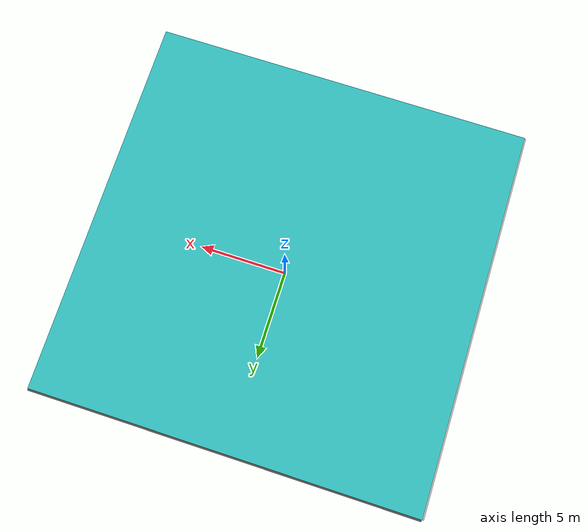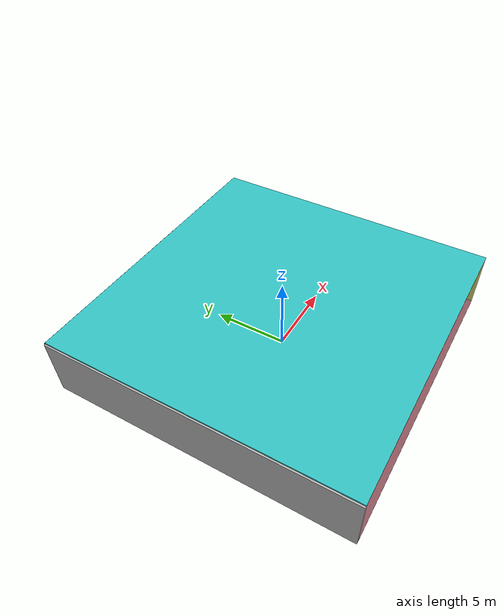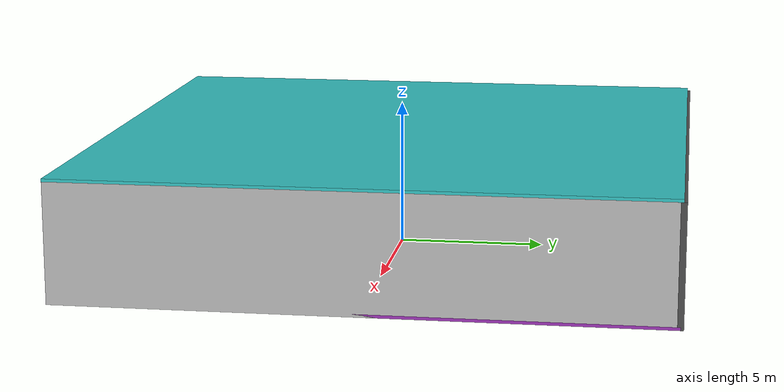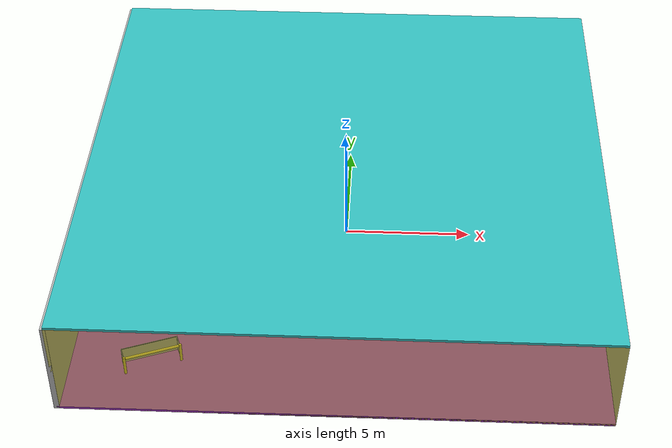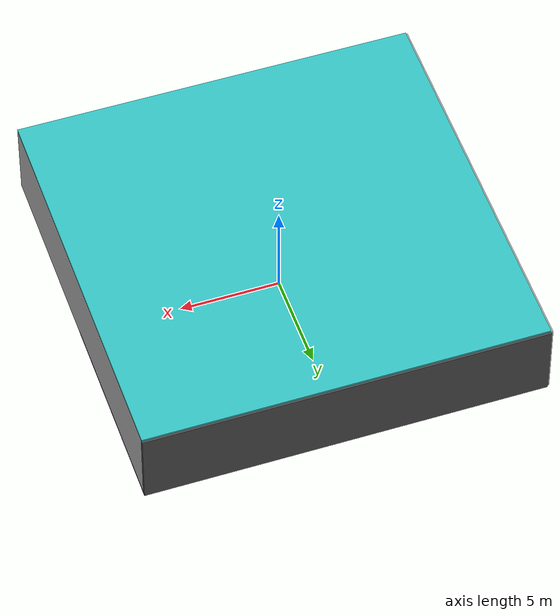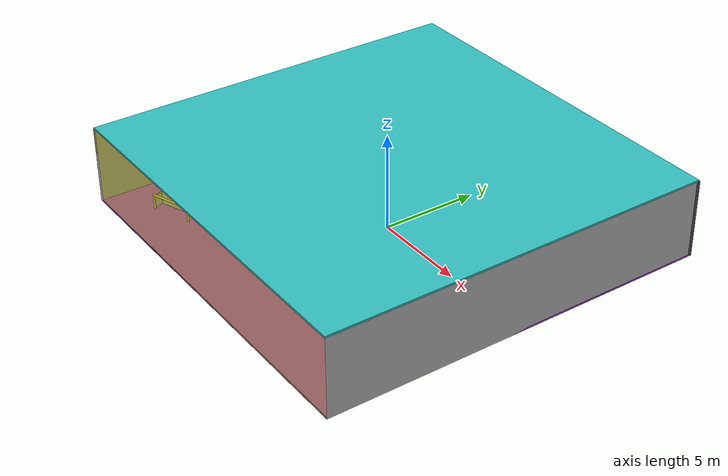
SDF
<sdf version="1.4">
 <world name="default">
  <physics type="ode">
   <max_step_size>0.001</max_step_size>
   <real_time_factor>1</real_time_factor>
   <real_time_update_rate>1000</real_time_update_rate>
   <gravity>0 0 -9.8</gravity>
  </physics>
  <scene><ambient>0.4 0.4 0.4 1</ambient><background>0.7 0.7 0.7 1</background><shadows>1</shadows></scene>
  <model name="Surrounding">
   <static>1</static>
   <link name="Ceiling">
    <collision name="Ceiling_Collision"><geometry><box><size>20 20 0.1</size></box></geometry></collision>
    <visual name="Ceiling_Visual">
     <geometry><box><size>20 20 0.1</size></box></geometry>
     <material>
      <script><uri>file://media/materials/scripts/gazebo.material</uri><name>Gazebo/TurquoiseGlow</name></script>
     </material>
    </visual>
    <pose>0 0 4.05 0 0 0</pose>
   </link>
   <link name="Wall_South">
    <collision name="Wall_South_Collision">
     <geometry><box><size>20 0 4</size></box></geometry>
     <pose>0 0 2 0 -0 0</pose>
    </collision>
    <visual name="Wall_South_Visual">
     <pose>0 0 2 0 -0 0</pose>
     <geometry><box><size>20 0 4</size></box></geometry>
     <material>
      <script>
       <uri>file://media/materials/scripts/gazebo.material</uri>
       <name>Gazebo/YellowTransparent</name>
      </script>
     </material>
    </visual>
    <velocity_decay><linear>0</linear><angular>0</angular></velocity_decay>
    <pose>0 -10 0 0 -0 0</pose>
   </link>
   <link name="Wall_East">
    <collision name="Wall_21_Collision">
     <geometry><box><size>20 0 4</size></box></geometry>
     <pose>0 0 2 0 -0 0</pose>
    </collision>
    <visual name="Wall_21_Visual">
     <pose>0 0 2 0 -0 0</pose>
     <geometry><box><size>20 0 4</size></box></geometry>
     <material>
      <script><uri>file://media/materials/scripts/gazebo.material</uri><name>Gazebo/Pioneer2Body</name></script>
     </material>
    </visual>
    <velocity_decay><linear>0</linear><angular>0</angular></velocity_decay>
    <pose>10 0 0 0 -0 1.5708</pose>
   </link>
   <link name="Wall_North">
    <collision name="Wall_22_Collision">
     <geometry><box><size>20 0.2 4</size></box></geometry>
     <pose>0 0 2 0 -0 0</pose>
    </collision>
    <visual name="Wall_22_Visual">
     <pose>0 0 2 0 -0 0</pose>
     <geometry><box><size>20 0.2 4</size></box></geometry>
     <material>
      <script><uri>file://media/materials/scripts/gazebo.material</uri><name>Gazebo/Road</name></script>
     </material>
    </visual>
    <velocity_decay><linear>0</linear><angular>0</angular></velocity_decay>
    <pose>0 10 0 0 -0 0</pose>
   </link>
   <link name="Wall_West">
    <collision name="Wall_23_Collision">
     <geometry><box><size>20 0.2 4</size></box></geometry>
     <pose>0 0 2 0 -0 0</pose>
    </collision>
    <visual name="Wall_23_Visual">
     <pose>0 0 2 0 -0 0</pose>
     <geometry><box><size>20 0.2 4</size></box></geometry>
     <material>
      <script><uri>file://media/materials/scripts/gazebo.material</uri><name>Gazebo/LightOn</name></script>
     </material>
    </visual>
    <velocity_decay><linear>0</linear><angular>0</angular></velocity_decay>
    <pose>-10 0 0 0 0 -1.5708</pose>
   </link>
   <link name="Ground_link">
    <collision name="collision">
     <pose>0 0 .05 0 -0 0</pose>
     <geometry><box><size>20 20 0.1</size></box></geometry>
    </collision>
    <visual name="visual">
     <pose>0 0 .05 0 -0 0</pose>
     <geometry><box><size>20 20 0.1</size></box></geometry>
     <material>
      <script><uri>file://media/materials/scripts/gazebo.material</uri><name>Gazebo/PurpleGlow</name></script>
     </material>
    </visual>
   </link>
   <static>1</static>
  </model>
  <spherical_coordinates>
   <surface_model>EARTH_WGS84</surface_model>
   <latitude_deg>0</latitude_deg>
   <longitude_deg>0</longitude_deg>
   <elevation>0</elevation>
   <heading_deg>0</heading_deg>
  </spherical_coordinates>
  <light name="lightball_0" type="diffuse">
   <diffuse>0.8 0.8 0.8 1</diffuse>
   <specular>0.2 0.2 0.2 1</specular>
   <attenuation>
    <range>100</range>
    <constant>0.7</constant>
    <linear>0.01</linear>
    <quadratic>0.001</quadratic>
   </attenuation>
   <direction>-0.5 0.1 -0.9</direction>
   <pose>-2.02695499736 4.06065909803 2.53619266064 0 0 0</pose>
  </light>
  <light name="lightball_1" type="diffuse">
   <diffuse>0.8 0.8 0.8 1</diffuse>
   <specular>0.2 0.2 0.2 1</specular>
   <attenuation>
    <range>100</range>
    <constant>0.7</constant>
    <linear>0.01</linear>
    <quadratic>0.001</quadratic>
   </attenuation>
   <direction>-0.5 0.1 -0.9</direction>
   <pose>0.754476481315 9.75948342598 2.24133466057 0 0 0</pose>
  </light>
  <light name="lightball_2" type="diffuse">
   <diffuse>0.8 0.8 0.8 1</diffuse>
   <specular>0.2 0.2 0.2 1</specular>
   <attenuation>
    <range>100</range>
    <constant>0.7</constant>
    <linear>0.01</linear>
    <quadratic>0.001</quadratic>
   </attenuation>
   <direction>-0.5 0.1 -0.9</direction>
   <pose>-9.89715143469 -0.608567484501 3.42506827261 0 0 0</pose>
  </light>
  <light name="lightball_3" type="diffuse">
   <diffuse>0.8 0.8 0.8 1</diffuse>
   <specular>0.2 0.2 0.2 1</specular>
   <attenuation>
    <range>100</range>
    <constant>0.7</constant>
    <linear>0.01</linear>
    <quadratic>0.001</quadratic>
   </attenuation>
   <direction>-0.5 0.1 -0.9</direction>
   <pose>-4.00478891795 2.76230902227 2.84371889801 0 0 0</pose>
  </light>
  <light name="lightball_4" type="diffuse">
   <diffuse>0.8 0.8 0.8 1</diffuse>
   <specular>0.2 0.2 0.2 1</specular>
   <attenuation>
    <range>100</range>
    <constant>0.7</constant>
    <linear>0.01</linear>
    <quadratic>0.001</quadratic>
   </attenuation>
   <direction>-0.5 0.1 -0.9</direction>
   <pose>-8.68233367294 -5.06548352867 2.34776369175 0 0 0</pose>
  </light>
  <include>
   <uri>model://robocup_3Dsim_goal</uri>
   <pose>-6.78493704429 -7.9077230088 0 0 0 1.93606680252</pose>
  </include>
  <include>
   <uri>model://construction_cone</uri>
   <pose>-6.85270931531 1.30450570797 0 0 0 1.90819792075</pose>
  </include>
  <include><uri>model://cabinet</uri><pose>-8.03495105247 4.60991735944 0 0 0 0.236545421806</pose></include>
  <include>
   <uri>model://robocup_3Dsim_goal</uri>
   <pose>-4.89968690288 -5.25117434544 0 0 0 1.78276567658</pose>
  </include>
  <include>
   <uri>model://construction_cone</uri>
   <pose>-1.5834926411 -5.13278178101 0 0 0 1.84597149037</pose>
  </include>
  <include><uri>model://cabinet</uri><pose>2.21823171516 1.83542469278 0 0 0 0.868546674736</pose></include>
  <include>
   <uri>model://construction_cone</uri>
   <pose>4.72940341588 -2.14106185127 0 0 0 2.76138714816</pose>
  </include>
  <include>
   <uri>model://textured_shapes</uri>
   <pose>4.46984382563 1.84236594895 0 0 0 1.50390056286</pose>
  </include>
  <include><uri>model://cabinet</uri><pose>7.58821829011 -4.5205633706 0 0 0 2.06056613256</pose></include>
  <include><uri>model://cabinet</uri><pose>7.94816467361 1.86034582838 0 0 0 1.61080266879</pose></include>
 </world>
</sdf>

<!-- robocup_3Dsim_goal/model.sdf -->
<sdf version="1.5">
  <model name="robocup_3d_goal">
    <static>true</static>
    <link name="left_post">
      <pose>0 1.05 0.45 0 0 0</pose>
      <collision name="collision">
        <geometry>
          <cylinder>
            <radius>0.05</radius>
            <length>0.9</length>
          </cylinder>
        </geometry>
      </collision>
      <visual name="visual">
        <geometry>
          <cylinder>
            <radius>0.05</radius>
            <length>0.9</length>
          </cylinder>
        </geometry>
        <material>
          <script>
            <uri>file://media/materials/scripts/gazebo.material</uri>
            <name>Gazebo/ZincYellow</name>
          </script>
        </material>
      </visual>
    </link>
    <link name="left_support_horiz_lower">
      <pose>0.30 1.05 0.01 0 0 0</pose>
      <collision name="collision">
        <geometry>
          <box>
            <size>0.50 0.02 0.02</size>
          </box>
        </geometry>
      </collision>
      <visual name="visual">
        <geometry>
          <box>
            <size>0.50 0.02 0.02</size>
          </box>
        </geometry>
        <material>
          <script>
            <uri>file://media/materials/scripts/gazebo.material</uri>
            <name>Gazebo/White</name>
          </script>
        </material>
      </visual>
    </link>
    <link name="left_support_horiz_upper">
      <pose>0.30 1.05 0.79 0 0 0</pose>
      <collision name="collision">
        <geometry>
          <box>
            <size>0.50 0.02 0.02</size>
          </box>
        </geometry>
      </collision>
      <visual name="visual">
        <geometry>
          <box>
            <size>0.50 0.02 0.02</size>
          </box>
        </geometry>
        <material>
          <script>
            <uri>file://media/materials/scripts/gazebo.material</uri>
            <name>Gazebo/White</name>
          </script>
        </material>
      </visual>
    </link>
    <link name="left_support_vertical">
      <pose>0.56 1.05 0.4 0 1.5708 0</pose>
      <collision name="collision">
        <geometry>
          <box>
            <size>0.80 0.02 0.02</size>
          </box>
        </geometry>
      </collision>
      <visual name="visual">
        <geometry>
          <box>
            <size>0.80 0.02 0.02</size>
          </box>
        </geometry>
        <material>
          <script>
            <uri>file://media/materials/scripts/gazebo.material</uri>
            <name>Gazebo/White</name>
          </script>
        </material>
      </visual>
    </link>
    <link name="right_support_horiz_lower">
      <pose>0.30 -1.05 0.01 0 0 0</pose>
      <collision name="collision">
        <geometry>
          <box>
            <size>0.50 0.02 0.02</size>
          </box>
        </geometry>
      </collision>
      <visual name="visual">
        <geometry>
          <box>
            <size>0.50 0.02 0.02</size>
          </box>
        </geometry>
        <material>
          <script>
            <uri>file://media/materials/scripts/gazebo.material</uri>
            <name>Gazebo/White</name>
          </script>
        </material>
      </visual>
    </link>
    <link name="right_support_horiz_upper">
      <pose>0.30 -1.05 0.79 0 0 0</pose>
      <collision name="collision">
        <geometry>
          <box>
            <size>0.50 0.02 0.02</size>
          </box>
        </geometry>
      </collision>
      <visual name="visual">
        <geometry>
          <box>
            <size>0.50 0.02 0.02</size>
          </box>
        </geometry>
        <material>
          <script>
            <uri>file://media/materials/scripts/gazebo.material</uri>
            <name>Gazebo/White</name>
          </script>
        </material>
      </visual>
    </link>
    <link name="right_support_vertical">
      <pose>0.56 -1.05 0.4 0 1.5708 0</pose>
      <collision name="collision">
        <geometry>
          <box>
            <size>0.80 0.02 0.02</size>
          </box>
        </geometry>
      </collision>
      <visual name="visual">
        <geometry>
          <box>
            <size>0.80 0.02 0.02</size>
          </box>
        </geometry>
        <material>
          <script>
            <uri>file://media/materials/scripts/gazebo.material</uri>
            <name>Gazebo/White</name>
          </script>
        </material>
      </visual>
    </link>
    <link name="center_support_horiz_lower">
      <pose>0.56 0 0.01 0 1.5708 0</pose>
      <collision name="collision">
        <geometry>
          <box>
            <size>0.02 2.08 0.02</size>
          </box>
        </geometry>
      </collision>
      <visual name="visual">
        <geometry>
          <box>
            <size>0.02 2.08 0.02</size>
          </box>
        </geometry>
        <material>
          <script>
            <uri>file://media/materials/scripts/gazebo.material</uri>
            <name>Gazebo/White</name>
          </script>
        </material>
      </visual>
    </link>
    <link name="center_support_horiz_upper">
      <pose>0.56 0 0.79 0 1.5708 0</pose>
      <collision name="collision">
        <geometry>
          <box>
            <size>0.02 2.08 0.02</size>
          </box>
        </geometry>
      </collision>
      <visual name="visual">
        <geometry>
          <box>
            <size>0.02 2.08 0.02</size>
          </box>
        </geometry>
        <material>
          <script>
            <uri>file://media/materials/scripts/gazebo.material</uri>
            <name>Gazebo/White</name>
          </script>
        </material>
      </visual>
    </link>
    <link name="right_post">
      <pose>0 -1.05 0.45 0 0 0</pose>
      <collision name="collision">
        <geometry>
          <cylinder>
            <radius>0.05</radius>
            <length>0.9</length>
          </cylinder>
        </geometry>
      </collision>
      <visual name="visual">
        <geometry>
          <cylinder>
            <radius>0.05</radius>
            <length>0.9</length>
          </cylinder>
        </geometry>
        <material>
          <script>
            <uri>file://media/materials/scripts/gazebo.material</uri>
            <name>Gazebo/ZincYellow</name>
          </script>
        </material>
      </visual>
    </link>
    <link name="crossbar">
      <pose>0 0 0.85 1.57 1.57 0</pose>
      <collision name="collision">
        <geometry>
          <cylinder>
            <radius>0.05</radius>
            <length>2.0</length>
          </cylinder>
        </geometry>
      </collision>
      <visual name="visual">
        <geometry>
          <cylinder>
            <radius>0.05</radius>
            <length>2.0</length>
          </cylinder>
        </geometry>
        <material>
          <script>
            <uri>file://media/materials/scripts/gazebo.material</uri>
            <name>Gazebo/ZincYellow</name>
          </script>
        </material>
      </visual>
    </link>
    <link name="center_net">
      <pose>0.56 0 0.40 0 0 0</pose>
      <collision name="collision">
        <geometry>
          <box>
            <size>0.01 2.1 0.80</size>
          </box>
        </geometry>
      </collision>
      <visual name="visual">
        <geometry>
          <box>
            <size>0.01 2.1 0.80</size>
          </box>
        </geometry>
        <material>
          <script>
            <uri>model://../model_source/models/robocup09_spl_field/materials/scripts/</uri>
            <uri>model://../model_source/models/robocup09_spl_field/materials/textures/</uri>
            <name>RoboCup/Net</name>
          </script>
        </material>
      </visual>
    </link>
    <link name="left_net">
      <pose>0.30 1.05 0.40 0 0 0</pose>
      <collision name="collision">
        <geometry>
          <box>
            <size>0.50 0.01 0.76</size>
          </box>
        </geometry>
      </collision>
      <visual name="visual">
        <geometry>
          <box>
            <size>0.50 0.01 0.76</size>
          </box>
        </geometry>
        <material>
          <script>
            <uri>model://../model_source/models/robocup09_spl_field/materials/scripts/</uri>
            <uri>model://../model_source/models/robocup09_spl_field/materials/textures/</uri>
            <name>RoboCup/Net</name>
          </script>
        </material>
      </visual>
    </link>
    <link name="right_net">
      <pose>0.30 -1.05 0.40 0 0 0</pose>
      <collision name="collision">
        <geometry>
          <box>
            <size>0.50 0.01 0.76</size>
          </box>
        </geometry>
      </collision>
      <visual name="visual">
        <geometry>
          <box>
            <size>0.50 0.01 0.76</size>
          </box>
        </geometry>
        <material>
          <script>
            <uri>model://../model_source/models/robocup09_spl_field/materials/scripts/</uri>
            <uri>model://../model_source/models/robocup09_spl_field/materials/textures/</uri>
            <name>RoboCup/Net</name>
          </script>
        </material>
      </visual>
    </link>
  </model>
</sdf>

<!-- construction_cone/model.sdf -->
<sdf version="1.5">
  <model name="Construction Cone">
    <link name="link">
      <collision name="collision">
        <geometry>
          <mesh>
            <scale>10 10 10</scale>
            <uri>file://isr-testbed/construction_cone/meshes/construction_cone.dae</uri>
          </mesh>
        </geometry>
      </collision>
      <visual name="visual">
        <geometry>
          <mesh>
            <scale>10 10 10</scale>
            <uri>file://isr-testbed/construction_cone/meshes/construction_cone.dae</uri>
          </mesh>
        </geometry>
      </visual>
    </link>
  </model>
</sdf>

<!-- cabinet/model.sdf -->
<sdf version="1.5">
  <model name="cabinet">
    <static>true</static>
    <link name="cabinet_bottom_plate">
      <inertial>
        <pose>0 0 -1 0 0 0</pose>
        <inertia>
          <ixx>2.050000</ixx>
          <ixy>0</ixy>
          <ixz>0</ixz>
          <iyy>2.050000</iyy>
          <iyz>0</iyz>
          <izz>2.050000</izz>
        </inertia>
        <mass>25.000000</mass>
      </inertial>
      <collision name="cabinet_bottom_plate_geom">
        <pose>0 0 0.010000 0 0 0</pose>
        <geometry>
          <box>
            <size>0.450000 0.450000 0.020000</size>
          </box>
        </geometry>
      </collision>
      <visual name="cabinet_bottom_plate_geom_visual">
        <pose>0 0 0.010000 0 0 0</pose>
        <geometry>
          <box>
            <size>0.450000 0.450000 0.020000</size>
          </box>
        </geometry>
        <material>
          <script>
            <uri>model://media/materials/scripts/gazebo.material</uri>
            <name>Gazebo/Wood</name>
          </script>
        </material>
      </visual>
      <collision name="cabinet_bottom_plate_geom_cabinet_back_plate">
        <pose>0.235000 0 0.510000 0 0 0</pose>
        <geometry>
          <box>
            <size>0.020000 0.450000 1.020000</size>
          </box>
        </geometry>
      </collision>
      <visual name="cabinet_bottom_plate_geom_cabinet_back_plate_visual">
        <pose>0.235000 0 0.510000 0 0 0</pose>
        <geometry>
          <box>
            <size>0.020000 0.450000 1.020000</size>
          </box>
        </geometry>
        <material>
          <script>
            <uri>model://media/materials/scripts/gazebo.material</uri>
            <name>Gazebo/Wood</name>
          </script>
        </material>
      </visual>
      <collision name="cabinet_bottom_plate_geom_cabinet_left_plate">
        <pose>0 0.235000 0.510000 0 0 0</pose>
        <geometry>
          <box>
            <size>0.450000 0.020000 1.020000</size>
          </box>
        </geometry>
      </collision>
      <visual name="cabinet_bottom_plate_geom_cabinet_left_plate_visual">
        <pose>0 0.235000 0.510000 0 0 0</pose>
        <geometry>
          <box>
            <size>0.450000 0.020000 1.020000</size>
          </box>
        </geometry>
        <material>
          <script>
            <uri>model://media/materials/scripts/gazebo.material</uri>
            <name>Gazebo/Wood</name>
          </script>
        </material>
      </visual>
      <collision name="cabinet_bottom_plate_geom_cabinet_middle_plate">
        <pose>0 0 0.510000 0 0 0</pose>
        <geometry>
          <box>
            <size>0.450000 0.450000 0.020000</size>
          </box>
        </geometry>
      </collision>
      <visual name="cabinet_bottom_plate_geom_cabinet_middle_plate_visual">
        <pose>0 0 0.510000 0 0 0</pose>
        <geometry>
          <box>
            <size>0.450000 0.450000 0.020000</size>
          </box>
        </geometry>
        <material>
          <script>
            <uri>model://media/materials/scripts/gazebo.material</uri>
            <name>Gazebo/Wood</name>
          </script>
        </material>
      </visual>
      <collision name="cabinet_bottom_plate_geom_cabinet_right_plate">
        <pose>0 -0.235000 0.510000 0 0 0</pose>
        <geometry>
          <box>
            <size>0.450000 0.020000 1.020000</size>
          </box>
        </geometry>
      </collision>
      <visual name="cabinet_bottom_plate_geom_cabinet_right_plate_visual">
        <pose>0 -0.235000 0.510000 0 0 0</pose>
        <geometry>
          <box>
            <size>0.450000 0.020000 1.020000</size>
          </box>
        </geometry>
        <material>
          <script>
            <uri>model://media/materials/scripts/gazebo.material</uri>
            <name>Gazebo/Wood</name>
          </script>
        </material>
      </visual>
      <collision name="cabinet_bottom_plate_geom_cabinet_top_plate">
        <pose>0 0 1.010000 0 0 0</pose>
        <geometry>
          <box>
            <size>0.450000 0.450000 0.020000</size>
          </box>
        </geometry>
      </collision>
      <visual name="cabinet_bottom_plate_geom_cabinet_top_plate_visual">
        <pose>0 0 1.010000 0 0 0</pose>
        <geometry>
          <box>
            <size>0.450000 0.450000 0.020000</size>
          </box>
        </geometry>
        <material>
          <script>
            <uri>model://media/materials/scripts/gazebo.material</uri>
            <name>Gazebo/Wood</name>
          </script>
        </material>
      </visual>
    </link>
  </model>
</sdf>

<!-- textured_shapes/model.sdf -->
<sdf version="1.6">
  <model name="textured_shapes">
    <pose>0 0 0.5 0 0 0</pose>
    <link name="box">
      <pose>0 -1.5 0 0 0 0</pose>
      <collision name="collision">
        <geometry>
          <box>
            <size>1 1 1</size>
          </box>
        </geometry>
      </collision>
      <visual name="visual">
        <geometry>
          <box>
            <size>1 1 1</size>
          </box>
        </geometry>
        <material>
          <script>
            <uri>model://../model_source/models/textured_shapes/materials/scripts</uri>
            <uri>model://../model_source/models/textured_shapes/materials/textures</uri>
            <name>TexturedShape/Squares</name>
          </script>
        </material>
      </visual>
    </link>
    <link name="sphere">
      <collision name="collision">
        <geometry>
          <sphere>
            <radius>0.5</radius>
          </sphere>
        </geometry>
      </collision>
      <visual name="visual">
        <geometry>
          <sphere>
            <radius>0.5</radius>
          </sphere>
        </geometry>
        <material>
          <script>
            <uri>model://../model_source/models/textured_shapes/materials/scripts</uri>
            <uri>model://../model_source/models/textured_shapes/materials/textures</uri>
            <name>TexturedShape/Squares</name>
          </script>
        </material>
      </visual>
    </link>
    <link name="cylinder">
      <pose>0 1.5 0 0 0 0</pose>
      <collision name="collision">
        <geometry>
          <cylinder>
            <radius>0.5</radius>
            <length>1</length>
          </cylinder>
        </geometry>
      </collision>
      <visual name="visual">
        <geometry>
          <cylinder>
            <radius>0.5</radius>
            <length>1</length>
          </cylinder>
        </geometry>
        <material>
          <script>
            <uri>model://../model_source/models/textured_shapes/materials/scripts</uri>
            <uri>model://../model_source/models/textured_shapes/materials/textures</uri>
            <name>TexturedShape/Squares</name>
          </script>
        </material>
      </visual>
    </link>
  </model>
</sdf>
